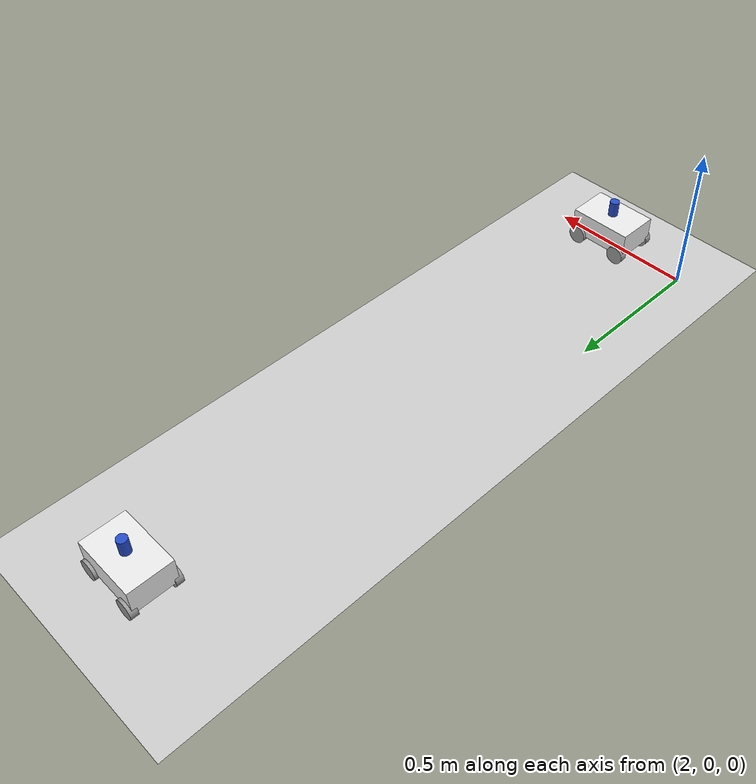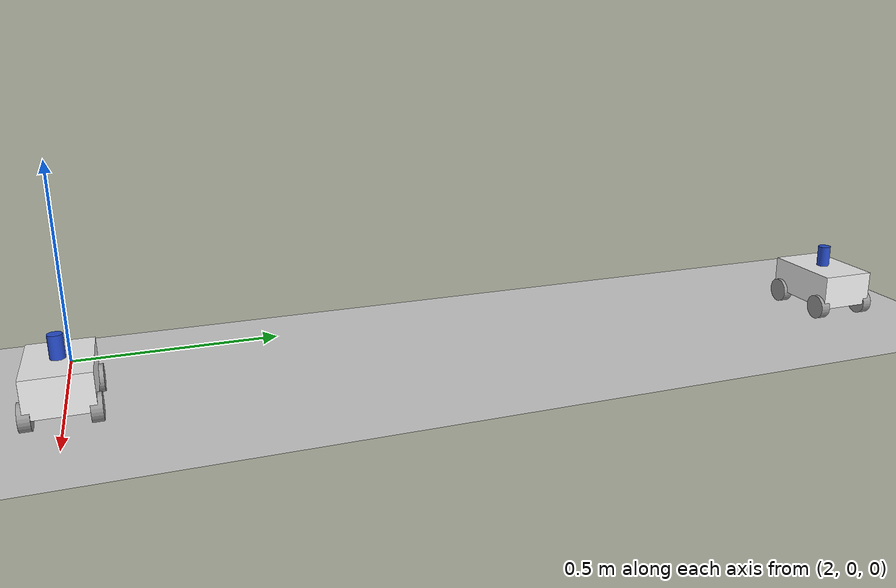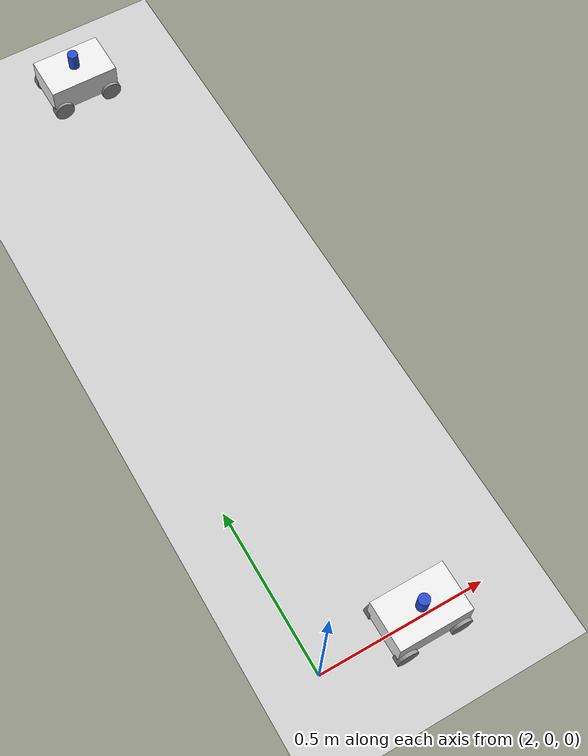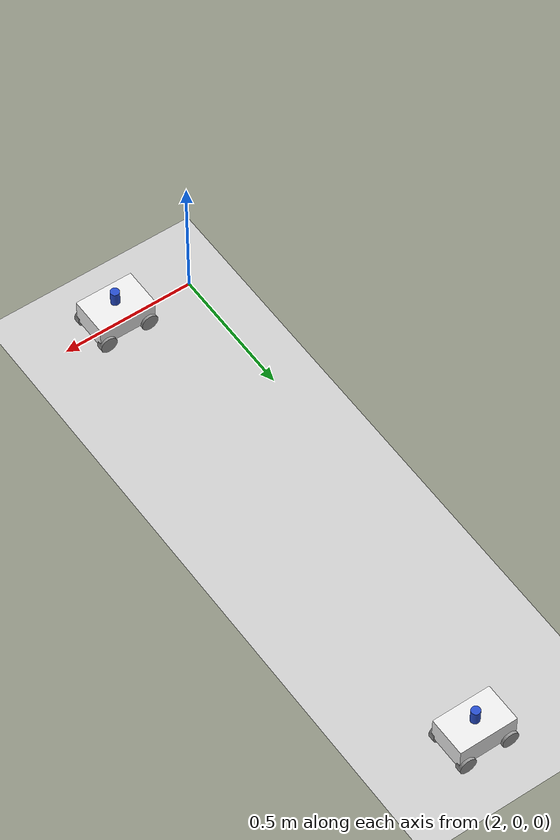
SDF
<sdf version="1.6">
 <world name="default">
  <model name="ground_plane">
   <static>1</static>
   <link name="link">
    <collision name="collision">
     <geometry><plane><normal>0 0 1</normal><size>100 100</size></plane></geometry>
     <surface>
      <contact><collide_bitmask>65535</collide_bitmask></contact>
      <friction><ode><mu>100</mu><mu2>50</mu2></ode></friction>
     </surface>
    </collision>
    <visual name="visual">
     <cast_shadows>0</cast_shadows>
     <geometry><plane><normal>0 0 1</normal><size>100 100</size></plane></geometry>
     <material>
      <script><uri>file://media/materials/scripts/gazebo.material</uri><name>Gazebo/Grey</name></script>
     </material>
    </visual>
   </link>
  </model>
  <model name="Robot6">
   <link name="base_link">
    <inertial>
     <mass>0.7</mass>
     <inertia>
      <ixx>0.00169896</ixx>
      <ixy>0</ixy>
      <ixz>0</ixz>
      <iyy>0.00329583</iyy>
      <iyz>0</iyz>
      <izz>0.00404979</izz>
     </inertia>
    </inertial>
    <collision name="base_link_collision"><geometry><box><size>0.22 0.145 0.09</size></box></geometry></collision>
    <collision name="base_link_fixed_joint_lump__ydlidar_link_collision_1">
     <pose>0 0 0.0725 0 -0 0</pose>
     <geometry><cylinder><length>0.055</length><radius>0.0165</radius></cylinder></geometry>
    </collision>
    <visual name="base_link_visual">
     <geometry><box><size>0.22 0.145 0.09</size></box></geometry>
     <material>
      <script><name>Gazebo/White</name><uri>file://media/materials/scripts/gazebo.material</uri></script>
     </material>
    </visual>
    <visual name="base_link_fixed_joint_lump__ydlidar_link_visual_1">
     <pose>0 0 0.0725 0 -0 0</pose>
     <geometry><cylinder><length>0.055</length><radius>0.0165</radius></cylinder></geometry>
     <material>
      <script><name>Gazebo/Blue</name><uri>file://media/materials/scripts/gazebo.material</uri></script>
     </material>
    </visual>
    <sensor name="camera" type="camera">
     <camera name="head">
      <horizontal_fov>1.39626</horizontal_fov>
      <image><width>800</width><height>800</height><format>R8G8B8</format></image>
      <clip><near>0.02</near><far>300</far></clip>
     </camera>
     <always_on>1</always_on>
     <update_rate>30</update_rate>
     <visualize>1</visualize>
     <plugin name="camera_controller" filename="libgazebo_ros_camera.so">
      <alwaysOn>1</alwaysOn>
      <updateRate>0.0</updateRate>
      <cameraName>iris/camera</cameraName>
      <imageTopicName>image_raw</imageTopicName>
      <cameraInfoTopicName>camera_info</cameraInfoTopicName>
      <frameName>camera_link</frameName>
      <hackBaseline>0.07</hackBaseline>
      <distortionK1>0.0</distortionK1>
      <distortionK2>0.0</distortionK2>
      <distortionK3>0.0</distortionK3>
      <distortionT1>0.0</distortionT1>
      <distortionT2>0.0</distortionT2>
      <robotNamespace>Robot6</robotNamespace>
     </plugin>
     <pose>0 0 0.0725 0 -0 0</pose>
    </sensor>
   </link>
   <link name="back_left_wheel">
    <pose>-0.0825 0.07 -0.045 0 -0 0</pose>
    <inertial>
     <mass>0.03</mass>
     <inertia>
      <ixx>9.2425e-06</ixx>
      <ixy>0</ixy>
      <ixz>0</ixz>
      <iyy>9.2425e-06</iyy>
      <iyz>0</iyz>
      <izz>1.536e-05</izz>
     </inertia>
    </inertial>
    <collision name="back_left_wheel_collision">
     <pose>0 0 0 1.5708 -0 0</pose>
     <geometry><cylinder><length>0.025</length><radius>0.032</radius></cylinder></geometry>
     <surface>
      <contact><ode><kp>1e+07</kp><kd>1</kd></ode></contact>
      <friction><ode><mu>1</mu><mu2>1</mu2><fdir1>1 0 0</fdir1></ode></friction>
     </surface>
    </collision>
    <visual name="back_left_wheel_visual">
     <pose>0 0 0 1.5708 -0 0</pose>
     <geometry><cylinder><length>0.025</length><radius>0.032</radius></cylinder></geometry>
     <material>
      <script><name>Gazebo/Grey</name><uri>file://media/materials/scripts/gazebo.material</uri></script>
     </material>
    </visual>
   </link>
   <joint name="back_left_wheel_joint" type="revolute">
    <child>back_left_wheel</child>
    <parent>base_link</parent>
    <axis>
     <xyz>0 1 0</xyz>
     <limit><lower>-1e+16</lower><upper>1e+16</upper></limit>
     <dynamics><spring_reference>0</spring_reference><spring_stiffness>0</spring_stiffness></dynamics>
     <use_parent_model_frame>1</use_parent_model_frame>
    </axis>
   </joint>
   <link name="back_right_wheel">
    <pose>-0.0825 -0.07 -0.045 0 -0 0</pose>
    <inertial>
     <mass>0.03</mass>
     <inertia>
      <ixx>9.2425e-06</ixx>
      <ixy>0</ixy>
      <ixz>0</ixz>
      <iyy>9.2425e-06</iyy>
      <iyz>0</iyz>
      <izz>1.536e-05</izz>
     </inertia>
    </inertial>
    <collision name="back_right_wheel_collision">
     <pose>0 0 0 1.5708 -0 0</pose>
     <geometry><cylinder><length>0.025</length><radius>0.032</radius></cylinder></geometry>
     <surface>
      <contact><ode><kp>1e+07</kp><kd>1</kd></ode></contact>
      <friction><ode><mu>1</mu><mu2>1</mu2><fdir1>1 0 0</fdir1></ode></friction>
     </surface>
    </collision>
    <visual name="back_right_wheel_visual">
     <pose>0 0 0 1.5708 -0 0</pose>
     <geometry><cylinder><length>0.025</length><radius>0.032</radius></cylinder></geometry>
     <material>
      <script><name>Gazebo/Grey</name><uri>file://media/materials/scripts/gazebo.material</uri></script>
     </material>
    </visual>
   </link>
   <joint name="back_right_wheel_joint" type="revolute">
    <child>back_right_wheel</child>
    <parent>base_link</parent>
    <axis>
     <xyz>0 1 0</xyz>
     <limit><lower>-1e+16</lower><upper>1e+16</upper></limit>
     <dynamics><spring_reference>0</spring_reference><spring_stiffness>0</spring_stiffness></dynamics>
     <use_parent_model_frame>1</use_parent_model_frame>
    </axis>
   </joint>
   <link name="front_left_wheel">
    <pose>0.0825 0.07 -0.045 0 -0 0</pose>
    <inertial>
     <mass>0.03</mass>
     <inertia>
      <ixx>9.2425e-06</ixx>
      <ixy>0</ixy>
      <ixz>0</ixz>
      <iyy>9.2425e-06</iyy>
      <iyz>0</iyz>
      <izz>1.536e-05</izz>
     </inertia>
    </inertial>
    <collision name="front_left_wheel_collision">
     <pose>0 0 0 1.5708 -0 0</pose>
     <geometry><cylinder><length>0.025</length><radius>0.032</radius></cylinder></geometry>
     <surface>
      <contact><ode><kp>1e+07</kp><kd>1</kd></ode></contact>
      <friction><ode><mu>1</mu><mu2>1</mu2><fdir1>1 0 0</fdir1></ode></friction>
     </surface>
    </collision>
    <visual name="front_left_wheel_visual">
     <pose>0 0 0 1.5708 -0 0</pose>
     <geometry><cylinder><length>0.025</length><radius>0.032</radius></cylinder></geometry>
     <material>
      <script><name>Gazebo/Grey</name><uri>file://media/materials/scripts/gazebo.material</uri></script>
     </material>
    </visual>
   </link>
   <joint name="front_left_wheel_joint" type="revolute">
    <child>front_left_wheel</child>
    <parent>base_link</parent>
    <axis>
     <xyz>0 1 0</xyz>
     <limit><lower>-1e+16</lower><upper>1e+16</upper></limit>
     <dynamics><spring_reference>0</spring_reference><spring_stiffness>0</spring_stiffness></dynamics>
     <use_parent_model_frame>1</use_parent_model_frame>
    </axis>
   </joint>
   <link name="front_right_wheel">
    <pose>0.0825 -0.07 -0.045 0 -0 0</pose>
    <inertial>
     <mass>0.03</mass>
     <inertia>
      <ixx>9.2425e-06</ixx>
      <ixy>0</ixy>
      <ixz>0</ixz>
      <iyy>9.2425e-06</iyy>
      <iyz>0</iyz>
      <izz>1.536e-05</izz>
     </inertia>
    </inertial>
    <collision name="front_right_wheel_collision">
     <pose>0 0 0 1.5708 -0 0</pose>
     <geometry><cylinder><length>0.025</length><radius>0.032</radius></cylinder></geometry>
     <surface>
      <contact><ode><kp>1e+07</kp><kd>1</kd></ode></contact>
      <friction><ode><mu>1</mu><mu2>1</mu2><fdir1>1 0 0</fdir1></ode></friction>
     </surface>
    </collision>
    <visual name="front_right_wheel_visual">
     <pose>0 0 0 1.5708 -0 0</pose>
     <geometry><cylinder><length>0.025</length><radius>0.032</radius></cylinder></geometry>
     <material>
      <script><name>Gazebo/Grey</name><uri>file://media/materials/scripts/gazebo.material</uri></script>
     </material>
    </visual>
   </link>
   <joint name="front_right_wheel_joint" type="revolute">
    <child>front_right_wheel</child>
    <parent>base_link</parent>
    <axis>
     <xyz>0 1 0</xyz>
     <limit><lower>-1e+16</lower><upper>1e+16</upper></limit>
     <dynamics><spring_reference>0</spring_reference><spring_stiffness>0</spring_stiffness></dynamics>
     <use_parent_model_frame>1</use_parent_model_frame>
    </axis>
   </joint>
   <static>0</static>
   <plugin name="skid_steer_drive_controller" filename="libgazebo_ros_skid_steer_drive.so">
    <rosDebugLevel>Debug</rosDebugLevel>
    <publishWheelTF>0</publishWheelTF>
    <publishTf>1</publishTf>
    <publishWheelJointState>0</publishWheelJointState>
    <alwaysOn>1</alwaysOn>
    <updateRate>100.0</updateRate>
    <leftFrontJoint>front_left_wheel_joint</leftFrontJoint>
    <rightFrontJoint>front_right_wheel_joint</rightFrontJoint>
    <leftRearJoint>back_left_wheel_joint</leftRearJoint>
    <rightRearJoint>back_right_wheel_joint</rightRearJoint>
    <wheelSeparation>0.145</wheelSeparation>
    <wheelDiameter>0.064</wheelDiameter>
    <broadcastTF>1</broadcastTF>
    <wheelTorque>2</wheelTorque>
    <wheelAcceleration>1.8</wheelAcceleration>
    <commandTopic>cmd_vel</commandTopic>
    <odometryFrame>odom</odometryFrame>
    <odometryTopic>odom</odometryTopic>
    <robotBaseFrame>base_footprint</robotBaseFrame>
    <robotNamespace>Robot6</robotNamespace>
   </plugin>
   <plugin name="imu_plugin" filename="libgazebo_ros_imu.so">
    <alwaysOn>1</alwaysOn>
    <bodyName>base_link</bodyName>
    <topicName>imu</topicName>
    <serviceName>imu_service</serviceName>
    <gaussianNoise>0.0</gaussianNoise>
    <updateRate>20.0</updateRate>
    <robotNamespace>Robot6</robotNamespace>
   </plugin>
   <pose>2.29588 1.99995 0.077 0 -0 0.000628</pose>
  </model>
  <model name="Robot5">
   <link name="base_link">
    <inertial>
     <mass>0.7</mass>
     <inertia>
      <ixx>0.00169896</ixx>
      <ixy>0</ixy>
      <ixz>0</ixz>
      <iyy>0.00329583</iyy>
      <iyz>0</iyz>
      <izz>0.00404979</izz>
     </inertia>
    </inertial>
    <collision name="base_link_collision"><geometry><box><size>0.22 0.145 0.09</size></box></geometry></collision>
    <collision name="base_link_fixed_joint_lump__ydlidar_link_collision_1">
     <pose>0 0 0.0725 0 -0 0</pose>
     <geometry><cylinder><length>0.055</length><radius>0.0165</radius></cylinder></geometry>
    </collision>
    <visual name="base_link_visual">
     <geometry><box><size>0.22 0.145 0.09</size></box></geometry>
     <material>
      <script><name>Gazebo/White</name><uri>file://media/materials/scripts/gazebo.material</uri></script>
     </material>
    </visual>
    <visual name="base_link_fixed_joint_lump__ydlidar_link_visual_1">
     <pose>0 0 0.0725 0 -0 0</pose>
     <geometry><cylinder><length>0.055</length><radius>0.0165</radius></cylinder></geometry>
     <material>
      <script><name>Gazebo/Blue</name><uri>file://media/materials/scripts/gazebo.material</uri></script>
     </material>
    </visual>
    <sensor name="camera" type="camera">
     <camera name="head">
      <horizontal_fov>1.39626</horizontal_fov>
      <image><width>800</width><height>800</height><format>R8G8B8</format></image>
      <clip><near>0.02</near><far>300</far></clip>
     </camera>
     <always_on>1</always_on>
     <update_rate>30</update_rate>
     <visualize>1</visualize>
     <plugin name="camera_controller" filename="libgazebo_ros_camera.so">
      <alwaysOn>1</alwaysOn>
      <updateRate>0.0</updateRate>
      <cameraName>iris/camera</cameraName>
      <imageTopicName>image_raw</imageTopicName>
      <cameraInfoTopicName>camera_info</cameraInfoTopicName>
      <frameName>camera_link</frameName>
      <hackBaseline>0.07</hackBaseline>
      <distortionK1>0.0</distortionK1>
      <distortionK2>0.0</distortionK2>
      <distortionK3>0.0</distortionK3>
      <distortionT1>0.0</distortionT1>
      <distortionT2>0.0</distortionT2>
      <robotNamespace>Robot5</robotNamespace>
     </plugin>
     <pose>0 0 0.0725 0 -0 0</pose>
    </sensor>
   </link>
   <link name="back_left_wheel">
    <pose>-0.0825 0.07 -0.045 0 -0 0</pose>
    <inertial>
     <mass>0.03</mass>
     <inertia>
      <ixx>9.2425e-06</ixx>
      <ixy>0</ixy>
      <ixz>0</ixz>
      <iyy>9.2425e-06</iyy>
      <iyz>0</iyz>
      <izz>1.536e-05</izz>
     </inertia>
    </inertial>
    <collision name="back_left_wheel_collision">
     <pose>0 0 0 1.5708 -0 0</pose>
     <geometry><cylinder><length>0.025</length><radius>0.032</radius></cylinder></geometry>
     <surface>
      <contact><ode><kp>1e+07</kp><kd>1</kd></ode></contact>
      <friction><ode><mu>1</mu><mu2>1</mu2><fdir1>1 0 0</fdir1></ode></friction>
     </surface>
    </collision>
    <visual name="back_left_wheel_visual">
     <pose>0 0 0 1.5708 -0 0</pose>
     <geometry><cylinder><length>0.025</length><radius>0.032</radius></cylinder></geometry>
     <material>
      <script><name>Gazebo/Grey</name><uri>file://media/materials/scripts/gazebo.material</uri></script>
     </material>
    </visual>
   </link>
   <joint name="back_left_wheel_joint" type="revolute">
    <child>back_left_wheel</child>
    <parent>base_link</parent>
    <axis>
     <xyz>0 1 0</xyz>
     <limit><lower>-1e+16</lower><upper>1e+16</upper></limit>
     <dynamics><spring_reference>0</spring_reference><spring_stiffness>0</spring_stiffness></dynamics>
     <use_parent_model_frame>1</use_parent_model_frame>
    </axis>
   </joint>
   <link name="back_right_wheel">
    <pose>-0.0825 -0.07 -0.045 0 -0 0</pose>
    <inertial>
     <mass>0.03</mass>
     <inertia>
      <ixx>9.2425e-06</ixx>
      <ixy>0</ixy>
      <ixz>0</ixz>
      <iyy>9.2425e-06</iyy>
      <iyz>0</iyz>
      <izz>1.536e-05</izz>
     </inertia>
    </inertial>
    <collision name="back_right_wheel_collision">
     <pose>0 0 0 1.5708 -0 0</pose>
     <geometry><cylinder><length>0.025</length><radius>0.032</radius></cylinder></geometry>
     <surface>
      <contact><ode><kp>1e+07</kp><kd>1</kd></ode></contact>
      <friction><ode><mu>1</mu><mu2>1</mu2><fdir1>1 0 0</fdir1></ode></friction>
     </surface>
    </collision>
    <visual name="back_right_wheel_visual">
     <pose>0 0 0 1.5708 -0 0</pose>
     <geometry><cylinder><length>0.025</length><radius>0.032</radius></cylinder></geometry>
     <material>
      <script><name>Gazebo/Grey</name><uri>file://media/materials/scripts/gazebo.material</uri></script>
     </material>
    </visual>
   </link>
   <joint name="back_right_wheel_joint" type="revolute">
    <child>back_right_wheel</child>
    <parent>base_link</parent>
    <axis>
     <xyz>0 1 0</xyz>
     <limit><lower>-1e+16</lower><upper>1e+16</upper></limit>
     <dynamics><spring_reference>0</spring_reference><spring_stiffness>0</spring_stiffness></dynamics>
     <use_parent_model_frame>1</use_parent_model_frame>
    </axis>
   </joint>
   <link name="front_left_wheel">
    <pose>0.0825 0.07 -0.045 0 -0 0</pose>
    <inertial>
     <mass>0.03</mass>
     <inertia>
      <ixx>9.2425e-06</ixx>
      <ixy>0</ixy>
      <ixz>0</ixz>
      <iyy>9.2425e-06</iyy>
      <iyz>0</iyz>
      <izz>1.536e-05</izz>
     </inertia>
    </inertial>
    <collision name="front_left_wheel_collision">
     <pose>0 0 0 1.5708 -0 0</pose>
     <geometry><cylinder><length>0.025</length><radius>0.032</radius></cylinder></geometry>
     <surface>
      <contact><ode><kp>1e+07</kp><kd>1</kd></ode></contact>
      <friction><ode><mu>1</mu><mu2>1</mu2><fdir1>1 0 0</fdir1></ode></friction>
     </surface>
    </collision>
    <visual name="front_left_wheel_visual">
     <pose>0 0 0 1.5708 -0 0</pose>
     <geometry><cylinder><length>0.025</length><radius>0.032</radius></cylinder></geometry>
     <material>
      <script><name>Gazebo/Grey</name><uri>file://media/materials/scripts/gazebo.material</uri></script>
     </material>
    </visual>
   </link>
   <joint name="front_left_wheel_joint" type="revolute">
    <child>front_left_wheel</child>
    <parent>base_link</parent>
    <axis>
     <xyz>0 1 0</xyz>
     <limit><lower>-1e+16</lower><upper>1e+16</upper></limit>
     <dynamics><spring_reference>0</spring_reference><spring_stiffness>0</spring_stiffness></dynamics>
     <use_parent_model_frame>1</use_parent_model_frame>
    </axis>
   </joint>
   <link name="front_right_wheel">
    <pose>0.0825 -0.07 -0.045 0 -0 0</pose>
    <inertial>
     <mass>0.03</mass>
     <inertia>
      <ixx>9.2425e-06</ixx>
      <ixy>0</ixy>
      <ixz>0</ixz>
      <iyy>9.2425e-06</iyy>
      <iyz>0</iyz>
      <izz>1.536e-05</izz>
     </inertia>
    </inertial>
    <collision name="front_right_wheel_collision">
     <pose>0 0 0 1.5708 -0 0</pose>
     <geometry><cylinder><length>0.025</length><radius>0.032</radius></cylinder></geometry>
     <surface>
      <contact><ode><kp>1e+07</kp><kd>1</kd></ode></contact>
      <friction><ode><mu>1</mu><mu2>1</mu2><fdir1>1 0 0</fdir1></ode></friction>
     </surface>
    </collision>
    <visual name="front_right_wheel_visual">
     <pose>0 0 0 1.5708 -0 0</pose>
     <geometry><cylinder><length>0.025</length><radius>0.032</radius></cylinder></geometry>
     <material>
      <script><name>Gazebo/Grey</name><uri>file://media/materials/scripts/gazebo.material</uri></script>
     </material>
    </visual>
   </link>
   <joint name="front_right_wheel_joint" type="revolute">
    <child>front_right_wheel</child>
    <parent>base_link</parent>
    <axis>
     <xyz>0 1 0</xyz>
     <limit><lower>-1e+16</lower><upper>1e+16</upper></limit>
     <dynamics><spring_reference>0</spring_reference><spring_stiffness>0</spring_stiffness></dynamics>
     <use_parent_model_frame>1</use_parent_model_frame>
    </axis>
   </joint>
   <static>0</static>
   <plugin name="skid_steer_drive_controller" filename="libgazebo_ros_skid_steer_drive.so">
    <rosDebugLevel>Debug</rosDebugLevel>
    <publishWheelTF>0</publishWheelTF>
    <publishTf>1</publishTf>
    <publishWheelJointState>0</publishWheelJointState>
    <alwaysOn>1</alwaysOn>
    <updateRate>100.0</updateRate>
    <leftFrontJoint>front_left_wheel_joint</leftFrontJoint>
    <rightFrontJoint>front_right_wheel_joint</rightFrontJoint>
    <leftRearJoint>back_left_wheel_joint</leftRearJoint>
    <rightRearJoint>back_right_wheel_joint</rightRearJoint>
    <wheelSeparation>0.145</wheelSeparation>
    <wheelDiameter>0.064</wheelDiameter>
    <broadcastTF>1</broadcastTF>
    <wheelTorque>2</wheelTorque>
    <wheelAcceleration>1.8</wheelAcceleration>
    <commandTopic>cmd_vel</commandTopic>
    <odometryFrame>odom</odometryFrame>
    <odometryTopic>odom</odometryTopic>
    <robotBaseFrame>base_footprint</robotBaseFrame>
    <robotNamespace>Robot5</robotNamespace>
   </plugin>
   <plugin name="imu_plugin" filename="libgazebo_ros_imu.so">
    <alwaysOn>1</alwaysOn>
    <bodyName>base_link</bodyName>
    <topicName>imu</topicName>
    <serviceName>imu_service</serviceName>
    <gaussianNoise>0.0</gaussianNoise>
    <updateRate>20.0</updateRate>
    <robotNamespace>Robot5</robotNamespace>
   </plugin>
   <pose>2.29588 -5.4e-05 0.077 0 -0 0.000628</pose>
  </model>
 </world>
</sdf>
